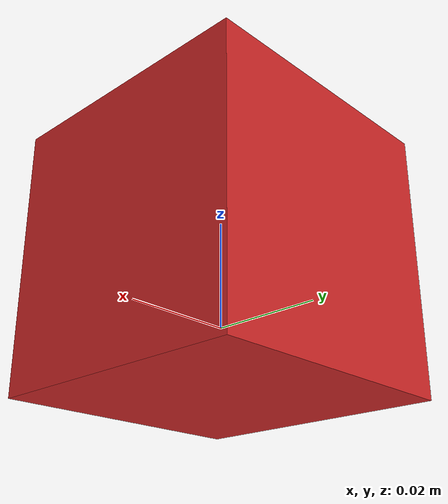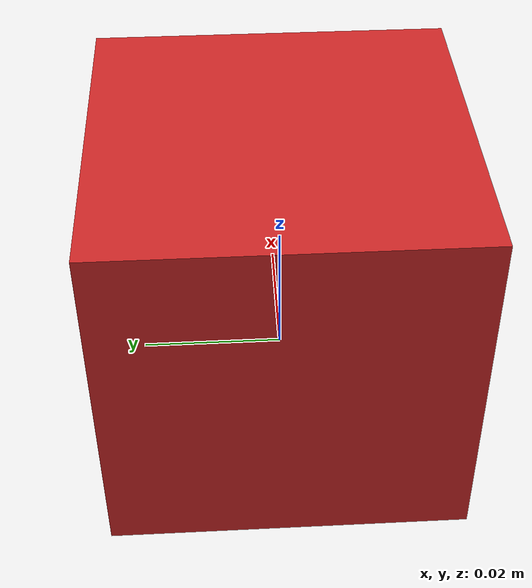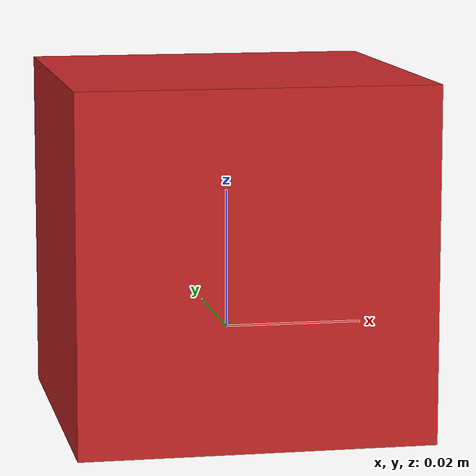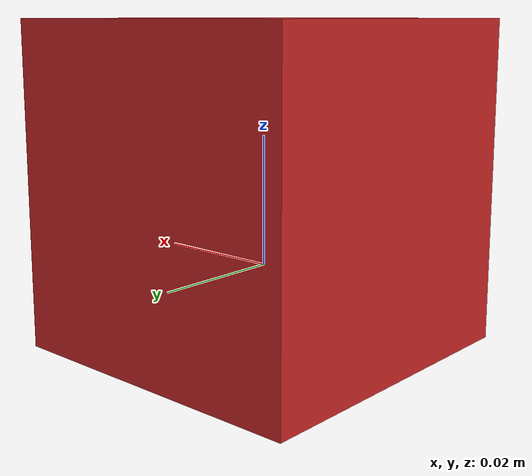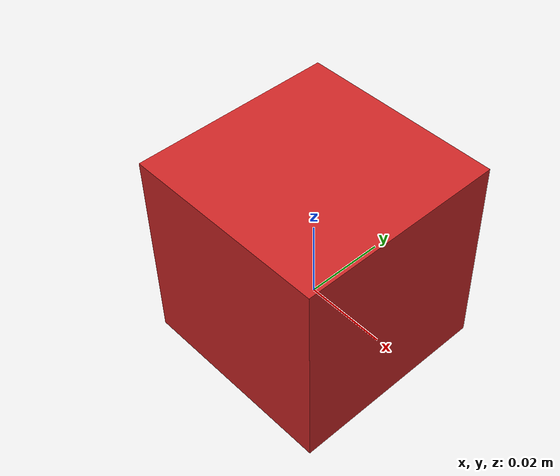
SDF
<?xml version="1.0" ?>
<sdf version="1.5">
  <model name="red_cube">
    <link name="link">
      <pose>0 0 0.0125 0 0 0</pose>
      <inertial>
        <mass>0.0073</mass>
        <inertia>
          <ixx>7.604166666666669e-07</ixx>
          <ixy>0</ixy>
          <ixz>0</ixz>
          <iyy>7.604166666666669e-07</iyy>
          <iyz>0</iyz>
          <izz>7.604166666666669e-07</izz>
        </inertia>
      </inertial>

      <collision name="collision">
        <geometry>
          <box>
            <size>0.05 0.05 0.05</size>
          </box>
        </geometry>
        <surface>
          <contact>
            <poissons_ratio>0.347</poissons_ratio>
            <elastic_modulus>8.8e+09</elastic_modulus>
            <ode>
              <kp>100000</kp>
              <kd>100</kd>
              <max_vel>100.0</max_vel>
              <min_depth>0.001</min_depth>
            </ode>
          </contact>
          <friction>
            <torsional>
              <coefficient>10.0</coefficient>
              <use_patch_radius>0</use_patch_radius>
              <surface_radius>0.01</surface_radius>
            </torsional>
          </friction>
        </surface>
      </collision>

      <visual name="visual">
        <geometry>
          <box>
            <size>0.05 0.05 0.05</size>
          </box>
        </geometry>
        <material>
          <script>
            <uri>file://media/materials/scripts/gazebo.material</uri>
            <name>Gazebo/Red</name>
          </script>
        </material>
      </visual>

    </link>
  </model>
</sdf>
